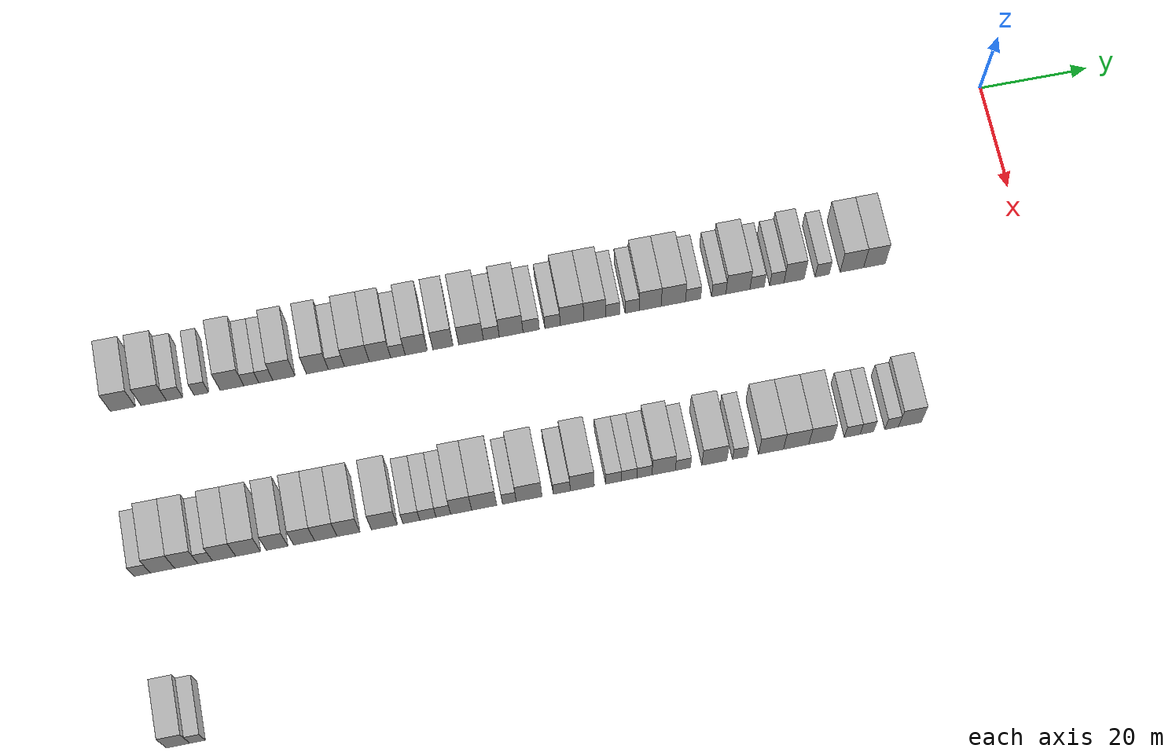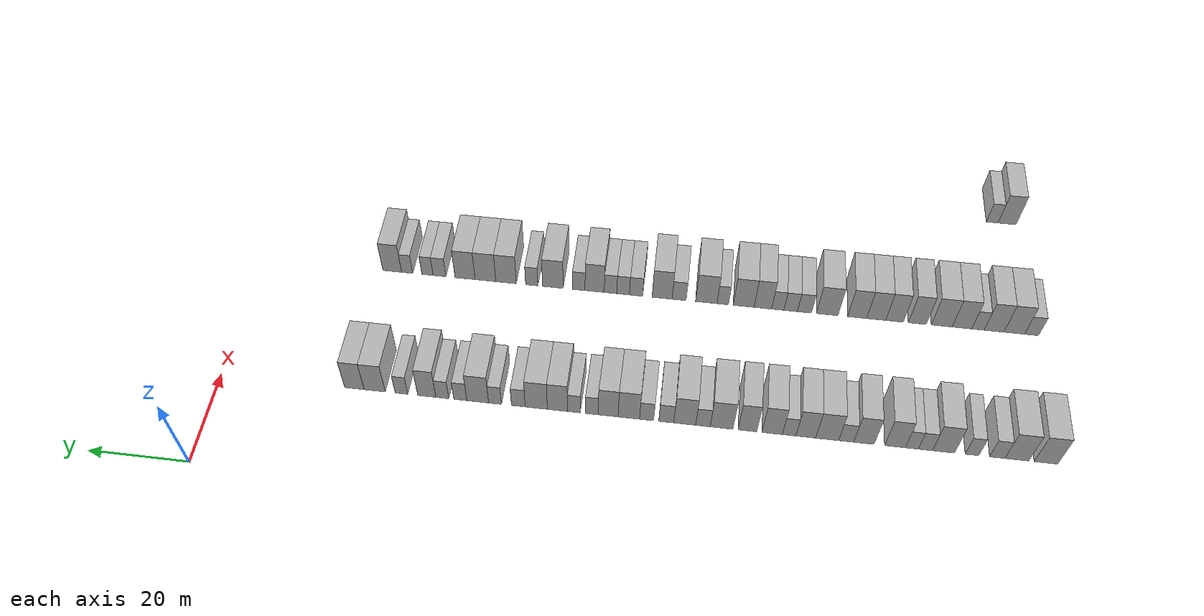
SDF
<sdf version="1.6">
 <world name="default">
  <model name="building_73">
   <static>1</static>
   <pose>25.0000 -161.7182 0 0.000000 0.000000 0.000000</pose>
   <link name="link">
    <pose>0 0 4.50 0 0 0</pose>
    <collision name="collision"><geometry><box><size>10.0000 4.3813 9.0000</size></box></geometry></collision>
    <visual name="visual">
     <cast_shadows>0</cast_shadows>
     <geometry><box><size>10.0000 4.3813 9.0000</size></box></geometry>
     <material>
      <script>
       <uri>model://HANNAS_wall/materials/scripts</uri>
       <uri>model://HANNAS_wall/materials/textures</uri>
       <name>vrc/HANNAS_wall</name>
      </script>
     </material>
    </visual>
   </link>
  </model>
  <model name="building_74">
   <static>1</static>
   <pose>25.0000 -156.3015 0 0.000000 0.000000 0.000000</pose>
   <link name="link">
    <pose>0 0 4.50 0 0 0</pose>
    <collision name="collision"><geometry><box><size>10.0000 4.4521 9.0000</size></box></geometry></collision>
    <visual name="visual">
     <cast_shadows>0</cast_shadows>
     <geometry><box><size>10.0000 4.4521 9.0000</size></box></geometry>
     <material>
      <script>
       <uri>model://HANNAS_wall/materials/scripts</uri>
       <uri>model://HANNAS_wall/materials/textures</uri>
       <name>vrc/HANNAS_wall</name>
      </script>
     </material>
    </visual>
   </link>
  </model>
  <model name="building_75">
   <static>1</static>
   <pose>25.0000 -152.6374 0 0.000000 0.000000 0.000000</pose>
   <link name="link">
    <pose>0 0 3.00 0 0 0</pose>
    <collision name="collision"><geometry><box><size>10.0000 2.8760 6.0000</size></box></geometry></collision>
    <visual name="visual">
     <cast_shadows>0</cast_shadows>
     <geometry><box><size>10.0000 2.8760 6.0000</size></box></geometry>
     <material>
      <script>
       <uri>model://HANNAS_wall/materials/scripts</uri>
       <uri>model://HANNAS_wall/materials/textures</uri>
       <name>vrc/HANNAS_wall</name>
      </script>
     </material>
    </visual>
   </link>
  </model>
  <model name="building_76">
   <static>1</static>
   <pose>25.0000 -147.9092 0 0.000000 0.000000 0.000000</pose>
   <link name="link">
    <pose>0 0 3.00 0 0 0</pose>
    <collision name="collision"><geometry><box><size>10.0000 2.5805 6.0000</size></box></geometry></collision>
    <visual name="visual">
     <cast_shadows>0</cast_shadows>
     <geometry><box><size>10.0000 2.5805 6.0000</size></box></geometry>
     <material>
      <script>
       <uri>model://HANNAS_wall/materials/scripts</uri>
       <uri>model://HANNAS_wall/materials/textures</uri>
       <name>vrc/HANNAS_wall</name>
      </script>
     </material>
    </visual>
   </link>
  </model>
  <model name="building_77">
   <static>1</static>
   <pose>25.0000 -142.5329 0 0.000000 0.000000 0.000000</pose>
   <link name="link">
    <pose>0 0 4.50 0 0 0</pose>
    <collision name="collision"><geometry><box><size>10.0000 4.1720 9.0000</size></box></geometry></collision>
    <visual name="visual">
     <cast_shadows>0</cast_shadows>
     <geometry><box><size>10.0000 4.1720 9.0000</size></box></geometry>
     <material>
      <script>
       <uri>model://HANNAS_wall/materials/scripts</uri>
       <uri>model://HANNAS_wall/materials/textures</uri>
       <name>vrc/HANNAS_wall</name>
      </script>
     </material>
    </visual>
   </link>
  </model>
  <model name="building_78">
   <static>1</static>
   <pose>25.0000 -139.1160 0 0.000000 0.000000 0.000000</pose>
   <link name="link">
    <pose>0 0 3.00 0 0 0</pose>
    <collision name="collision"><geometry><box><size>10.0000 2.6619 6.0000</size></box></geometry></collision>
    <visual name="visual">
     <cast_shadows>0</cast_shadows>
     <geometry><box><size>10.0000 2.6619 6.0000</size></box></geometry>
     <material>
      <script>
       <uri>model://HANNAS_wall/materials/scripts</uri>
       <uri>model://HANNAS_wall/materials/textures</uri>
       <name>vrc/HANNAS_wall</name>
      </script>
     </material>
    </visual>
   </link>
  </model>
  <model name="building_79">
   <static>1</static>
   <pose>25.0000 -136.5562 0 0.000000 0.000000 0.000000</pose>
   <link name="link">
    <pose>0 0 3.00 0 0 0</pose>
    <collision name="collision"><geometry><box><size>10.0000 2.4576 6.0000</size></box></geometry></collision>
    <visual name="visual">
     <cast_shadows>0</cast_shadows>
     <geometry><box><size>10.0000 2.4576 6.0000</size></box></geometry>
     <material>
      <script>
       <uri>model://HANNAS_wall/materials/scripts</uri>
       <uri>model://HANNAS_wall/materials/textures</uri>
       <name>vrc/HANNAS_wall</name>
      </script>
     </material>
    </visual>
   </link>
  </model>
  <model name="building_80">
   <static>1</static>
   <pose>25.0000 -133.3640 0 0.000000 0.000000 0.000000</pose>
   <link name="link">
    <pose>0 0 4.50 0 0 0</pose>
    <collision name="collision"><geometry><box><size>10.0000 3.9268 9.0000</size></box></geometry></collision>
    <visual name="visual">
     <cast_shadows>0</cast_shadows>
     <geometry><box><size>10.0000 3.9268 9.0000</size></box></geometry>
     <material>
      <script>
       <uri>model://HANNAS_wall/materials/scripts</uri>
       <uri>model://HANNAS_wall/materials/textures</uri>
       <name>vrc/HANNAS_wall</name>
      </script>
     </material>
    </visual>
   </link>
  </model>
  <model name="building_81">
   <static>1</static>
   <pose>25.0000 -127.4541 0 0.000000 0.000000 0.000000</pose>
   <link name="link">
    <pose>0 0 4.50 0 0 0</pose>
    <collision name="collision"><geometry><box><size>10.0000 3.8930 9.0000</size></box></geometry></collision>
    <visual name="visual">
     <cast_shadows>0</cast_shadows>
     <geometry><box><size>10.0000 3.8930 9.0000</size></box></geometry>
     <material>
      <script>
       <uri>model://HANNAS_wall/materials/scripts</uri>
       <uri>model://HANNAS_wall/materials/textures</uri>
       <name>vrc/HANNAS_wall</name>
      </script>
     </material>
    </visual>
   </link>
  </model>
  <model name="building_82">
   <static>1</static>
   <pose>25.0000 -124.0770 0 0.000000 0.000000 0.000000</pose>
   <link name="link">
    <pose>0 0 3.00 0 0 0</pose>
    <collision name="collision"><geometry><box><size>10.0000 2.8612 6.0000</size></box></geometry></collision>
    <visual name="visual">
     <cast_shadows>0</cast_shadows>
     <geometry><box><size>10.0000 2.8612 6.0000</size></box></geometry>
     <material>
      <script>
       <uri>model://HANNAS_wall/materials/scripts</uri>
       <uri>model://HANNAS_wall/materials/textures</uri>
       <name>vrc/HANNAS_wall</name>
      </script>
     </material>
    </visual>
   </link>
  </model>
  <model name="building_83">
   <static>1</static>
   <pose>25.0000 -120.4409 0 0.000000 0.000000 0.000000</pose>
   <link name="link">
    <pose>0 0 4.50 0 0 0</pose>
    <collision name="collision"><geometry><box><size>10.0000 4.4110 9.0000</size></box></geometry></collision>
    <visual name="visual">
     <cast_shadows>0</cast_shadows>
     <geometry><box><size>10.0000 4.4110 9.0000</size></box></geometry>
     <material>
      <script>
       <uri>model://HANNAS_wall/materials/scripts</uri>
       <uri>model://HANNAS_wall/materials/textures</uri>
       <name>vrc/HANNAS_wall</name>
      </script>
     </material>
    </visual>
   </link>
  </model>
  <model name="building_84">
   <static>1</static>
   <pose>25.0000 -116.3368 0 0.000000 0.000000 0.000000</pose>
   <link name="link">
    <pose>0 0 4.50 0 0 0</pose>
    <collision name="collision"><geometry><box><size>10.0000 3.7971 9.0000</size></box></geometry></collision>
    <visual name="visual">
     <cast_shadows>0</cast_shadows>
     <geometry><box><size>10.0000 3.7971 9.0000</size></box></geometry>
     <material>
      <script>
       <uri>model://HANNAS_wall/materials/scripts</uri>
       <uri>model://HANNAS_wall/materials/textures</uri>
       <name>vrc/HANNAS_wall</name>
      </script>
     </material>
    </visual>
   </link>
  </model>
  <model name="building_85">
   <static>1</static>
   <pose>25.0000 -113.1431 0 0.000000 0.000000 0.000000</pose>
   <link name="link">
    <pose>0 0 3.00 0 0 0</pose>
    <collision name="collision"><geometry><box><size>10.0000 2.5903 6.0000</size></box></geometry></collision>
    <visual name="visual">
     <cast_shadows>0</cast_shadows>
     <geometry><box><size>10.0000 2.5903 6.0000</size></box></geometry>
     <material>
      <script>
       <uri>model://HANNAS_wall/materials/scripts</uri>
       <uri>model://HANNAS_wall/materials/textures</uri>
       <name>vrc/HANNAS_wall</name>
      </script>
     </material>
    </visual>
   </link>
  </model>
  <model name="building_86">
   <static>1</static>
   <pose>25.0000 -109.8845 0 0.000000 0.000000 0.000000</pose>
   <link name="link">
    <pose>0 0 4.50 0 0 0</pose>
    <collision name="collision"><geometry><box><size>10.0000 3.9269 9.0000</size></box></geometry></collision>
    <visual name="visual">
     <cast_shadows>0</cast_shadows>
     <geometry><box><size>10.0000 3.9269 9.0000</size></box></geometry>
     <material>
      <script>
       <uri>model://HANNAS_wall/materials/scripts</uri>
       <uri>model://HANNAS_wall/materials/textures</uri>
       <name>vrc/HANNAS_wall</name>
      </script>
     </material>
    </visual>
   </link>
  </model>
  <model name="building_87">
   <static>1</static>
   <pose>25.0000 -105.1156 0 0.000000 0.000000 0.000000</pose>
   <link name="link">
    <pose>0 0 4.50 0 0 0</pose>
    <collision name="collision"><geometry><box><size>10.0000 3.6111 9.0000</size></box></geometry></collision>
    <visual name="visual">
     <cast_shadows>0</cast_shadows>
     <geometry><box><size>10.0000 3.6111 9.0000</size></box></geometry>
     <material>
      <script>
       <uri>model://HANNAS_wall/materials/scripts</uri>
       <uri>model://HANNAS_wall/materials/textures</uri>
       <name>vrc/HANNAS_wall</name>
      </script>
     </material>
    </visual>
   </link>
  </model>
  <model name="building_88">
   <static>1</static>
   <pose>25.0000 -100.0986 0 0.000000 0.000000 0.000000</pose>
   <link name="link">
    <pose>0 0 4.50 0 0 0</pose>
    <collision name="collision"><geometry><box><size>10.0000 4.4229 9.0000</size></box></geometry></collision>
    <visual name="visual">
     <cast_shadows>0</cast_shadows>
     <geometry><box><size>10.0000 4.4229 9.0000</size></box></geometry>
     <material>
      <script>
       <uri>model://HANNAS_wall/materials/scripts</uri>
       <uri>model://HANNAS_wall/materials/textures</uri>
       <name>vrc/HANNAS_wall</name>
      </script>
     </material>
    </visual>
   </link>
  </model>
  <model name="building_89">
   <static>1</static>
   <pose>25.0000 -96.4747 0 0.000000 0.000000 0.000000</pose>
   <link name="link">
    <pose>0 0 3.00 0 0 0</pose>
    <collision name="collision"><geometry><box><size>10.0000 2.8248 6.0000</size></box></geometry></collision>
    <visual name="visual">
     <cast_shadows>0</cast_shadows>
     <geometry><box><size>10.0000 2.8248 6.0000</size></box></geometry>
     <material>
      <script>
       <uri>model://HANNAS_wall/materials/scripts</uri>
       <uri>model://HANNAS_wall/materials/textures</uri>
       <name>vrc/HANNAS_wall</name>
      </script>
     </material>
    </visual>
   </link>
  </model>
  <model name="building_90">
   <static>1</static>
   <pose>25.0000 -92.9332 0 0.000000 0.000000 0.000000</pose>
   <link name="link">
    <pose>0 0 4.50 0 0 0</pose>
    <collision name="collision"><geometry><box><size>10.0000 4.2583 9.0000</size></box></geometry></collision>
    <visual name="visual">
     <cast_shadows>0</cast_shadows>
     <geometry><box><size>10.0000 4.2583 9.0000</size></box></geometry>
     <material>
      <script>
       <uri>model://HANNAS_wall/materials/scripts</uri>
       <uri>model://HANNAS_wall/materials/textures</uri>
       <name>vrc/HANNAS_wall</name>
      </script>
     </material>
    </visual>
   </link>
  </model>
  <model name="building_91">
   <static>1</static>
   <pose>25.0000 -89.3431 0 0.000000 0.000000 0.000000</pose>
   <link name="link">
    <pose>0 0 3.00 0 0 0</pose>
    <collision name="collision"><geometry><box><size>10.0000 2.9218 6.0000</size></box></geometry></collision>
    <visual name="visual">
     <cast_shadows>0</cast_shadows>
     <geometry><box><size>10.0000 2.9218 6.0000</size></box></geometry>
     <material>
      <script>
       <uri>model://HANNAS_wall/materials/scripts</uri>
       <uri>model://HANNAS_wall/materials/textures</uri>
       <name>vrc/HANNAS_wall</name>
      </script>
     </material>
    </visual>
   </link>
  </model>
  <model name="building_92">
   <static>1</static>
   <pose>25.0000 -85.5002 0 0.000000 0.000000 0.000000</pose>
   <link name="link">
    <pose>0 0 3.00 0 0 0</pose>
    <collision name="collision"><geometry><box><size>10.0000 2.7640 6.0000</size></box></geometry></collision>
    <visual name="visual">
     <cast_shadows>0</cast_shadows>
     <geometry><box><size>10.0000 2.7640 6.0000</size></box></geometry>
     <material>
      <script>
       <uri>model://HANNAS_wall/materials/scripts</uri>
       <uri>model://HANNAS_wall/materials/textures</uri>
       <name>vrc/HANNAS_wall</name>
      </script>
     </material>
    </visual>
   </link>
  </model>
  <model name="building_93">
   <static>1</static>
   <pose>25.0000 -82.0071 0 0.000000 0.000000 0.000000</pose>
   <link name="link">
    <pose>0 0 4.50 0 0 0</pose>
    <collision name="collision"><geometry><box><size>10.0000 4.2223 9.0000</size></box></geometry></collision>
    <visual name="visual">
     <cast_shadows>0</cast_shadows>
     <geometry><box><size>10.0000 4.2223 9.0000</size></box></geometry>
     <material>
      <script>
       <uri>model://HANNAS_wall/materials/scripts</uri>
       <uri>model://HANNAS_wall/materials/textures</uri>
       <name>vrc/HANNAS_wall</name>
      </script>
     </material>
    </visual>
   </link>
  </model>
  <model name="building_94">
   <static>1</static>
   <pose>25.0000 -77.9444 0 0.000000 0.000000 0.000000</pose>
   <link name="link">
    <pose>0 0 4.50 0 0 0</pose>
    <collision name="collision"><geometry><box><size>10.0000 3.9031 9.0000</size></box></geometry></collision>
    <visual name="visual">
     <cast_shadows>0</cast_shadows>
     <geometry><box><size>10.0000 3.9031 9.0000</size></box></geometry>
     <material>
      <script>
       <uri>model://HANNAS_wall/materials/scripts</uri>
       <uri>model://HANNAS_wall/materials/textures</uri>
       <name>vrc/HANNAS_wall</name>
      </script>
     </material>
    </visual>
   </link>
  </model>
  <model name="building_95">
   <static>1</static>
   <pose>25.0000 -74.7239 0 0.000000 0.000000 0.000000</pose>
   <link name="link">
    <pose>0 0 3.00 0 0 0</pose>
    <collision name="collision"><geometry><box><size>10.0000 2.5379 6.0000</size></box></geometry></collision>
    <visual name="visual">
     <cast_shadows>0</cast_shadows>
     <geometry><box><size>10.0000 2.5379 6.0000</size></box></geometry>
     <material>
      <script>
       <uri>model://HANNAS_wall/materials/scripts</uri>
       <uri>model://HANNAS_wall/materials/textures</uri>
       <name>vrc/HANNAS_wall</name>
      </script>
     </material>
    </visual>
   </link>
  </model>
  <model name="building_96">
   <static>1</static>
   <pose>25.0000 -71.1891 0 0.000000 0.000000 0.000000</pose>
   <link name="link">
    <pose>0 0 3.00 0 0 0</pose>
    <collision name="collision"><geometry><box><size>10.0000 2.5318 6.0000</size></box></geometry></collision>
    <visual name="visual">
     <cast_shadows>0</cast_shadows>
     <geometry><box><size>10.0000 2.5318 6.0000</size></box></geometry>
     <material>
      <script>
       <uri>model://HANNAS_wall/materials/scripts</uri>
       <uri>model://HANNAS_wall/materials/textures</uri>
       <name>vrc/HANNAS_wall</name>
      </script>
     </material>
    </visual>
   </link>
  </model>
  <model name="building_97">
   <static>1</static>
   <pose>25.0000 -67.9369 0 0.000000 0.000000 0.000000</pose>
   <link name="link">
    <pose>0 0 4.50 0 0 0</pose>
    <collision name="collision"><geometry><box><size>10.0000 3.9725 9.0000</size></box></geometry></collision>
    <visual name="visual">
     <cast_shadows>0</cast_shadows>
     <geometry><box><size>10.0000 3.9725 9.0000</size></box></geometry>
     <material>
      <script>
       <uri>model://HANNAS_wall/materials/scripts</uri>
       <uri>model://HANNAS_wall/materials/textures</uri>
       <name>vrc/HANNAS_wall</name>
      </script>
     </material>
    </visual>
   </link>
  </model>
  <model name="building_98">
   <static>1</static>
   <pose>25.0000 -63.7596 0 0.000000 0.000000 0.000000</pose>
   <link name="link">
    <pose>0 0 4.50 0 0 0</pose>
    <collision name="collision"><geometry><box><size>10.0000 4.3821 9.0000</size></box></geometry></collision>
    <visual name="visual">
     <cast_shadows>0</cast_shadows>
     <geometry><box><size>10.0000 4.3821 9.0000</size></box></geometry>
     <material>
      <script>
       <uri>model://HANNAS_wall/materials/scripts</uri>
       <uri>model://HANNAS_wall/materials/textures</uri>
       <name>vrc/HANNAS_wall</name>
      </script>
     </material>
    </visual>
   </link>
  </model>
  <model name="building_99">
   <static>1</static>
   <pose>25.0000 -60.1982 0 0.000000 0.000000 0.000000</pose>
   <link name="link">
    <pose>0 0 3.00 0 0 0</pose>
    <collision name="collision"><geometry><box><size>10.0000 2.7407 6.0000</size></box></geometry></collision>
    <visual name="visual">
     <cast_shadows>0</cast_shadows>
     <geometry><box><size>10.0000 2.7407 6.0000</size></box></geometry>
     <material>
      <script>
       <uri>model://HANNAS_wall/materials/scripts</uri>
       <uri>model://HANNAS_wall/materials/textures</uri>
       <name>vrc/HANNAS_wall</name>
      </script>
     </material>
    </visual>
   </link>
  </model>
  <model name="building_100">
   <static>1</static>
   <pose>25.0000 -55.5443 0 0.000000 0.000000 0.000000</pose>
   <link name="link">
    <pose>0 0 3.00 0 0 0</pose>
    <collision name="collision"><geometry><box><size>10.0000 2.5671 6.0000</size></box></geometry></collision>
    <visual name="visual">
     <cast_shadows>0</cast_shadows>
     <geometry><box><size>10.0000 2.5671 6.0000</size></box></geometry>
     <material>
      <script>
       <uri>model://HANNAS_wall/materials/scripts</uri>
       <uri>model://HANNAS_wall/materials/textures</uri>
       <name>vrc/HANNAS_wall</name>
      </script>
     </material>
    </visual>
   </link>
  </model>
  <model name="building_101">
   <static>1</static>
   <pose>25.0000 -52.0835 0 0.000000 0.000000 0.000000</pose>
   <link name="link">
    <pose>0 0 4.50 0 0 0</pose>
    <collision name="collision"><geometry><box><size>10.0000 4.3545 9.0000</size></box></geometry></collision>
    <visual name="visual">
     <cast_shadows>0</cast_shadows>
     <geometry><box><size>10.0000 4.3545 9.0000</size></box></geometry>
     <material>
      <script>
       <uri>model://HANNAS_wall/materials/scripts</uri>
       <uri>model://HANNAS_wall/materials/textures</uri>
       <name>vrc/HANNAS_wall</name>
      </script>
     </material>
    </visual>
   </link>
  </model>
  <model name="building_102">
   <static>1</static>
   <pose>25.0000 -48.5972 0 0.000000 0.000000 0.000000</pose>
   <link name="link">
    <pose>0 0 3.00 0 0 0</pose>
    <collision name="collision"><geometry><box><size>10.0000 2.6182 6.0000</size></box></geometry></collision>
    <visual name="visual">
     <cast_shadows>0</cast_shadows>
     <geometry><box><size>10.0000 2.6182 6.0000</size></box></geometry>
     <material>
      <script>
       <uri>model://HANNAS_wall/materials/scripts</uri>
       <uri>model://HANNAS_wall/materials/textures</uri>
       <name>vrc/HANNAS_wall</name>
      </script>
     </material>
    </visual>
   </link>
  </model>
  <model name="building_103">
   <static>1</static>
   <pose>25.0000 -44.9906 0 0.000000 0.000000 0.000000</pose>
   <link name="link">
    <pose>0 0 3.00 0 0 0</pose>
    <collision name="collision"><geometry><box><size>10.0000 2.5950 6.0000</size></box></geometry></collision>
    <visual name="visual">
     <cast_shadows>0</cast_shadows>
     <geometry><box><size>10.0000 2.5950 6.0000</size></box></geometry>
     <material>
      <script>
       <uri>model://HANNAS_wall/materials/scripts</uri>
       <uri>model://HANNAS_wall/materials/textures</uri>
       <name>vrc/HANNAS_wall</name>
      </script>
     </material>
    </visual>
   </link>
  </model>
  <model name="building_104">
   <static>1</static>
   <pose>25.0000 -41.8631 0 0.000000 0.000000 0.000000</pose>
   <link name="link">
    <pose>0 0 4.50 0 0 0</pose>
    <collision name="collision"><geometry><box><size>10.0000 3.6600 9.0000</size></box></geometry></collision>
    <visual name="visual">
     <cast_shadows>0</cast_shadows>
     <geometry><box><size>10.0000 3.6600 9.0000</size></box></geometry>
     <material>
      <script>
       <uri>model://HANNAS_wall/materials/scripts</uri>
       <uri>model://HANNAS_wall/materials/textures</uri>
       <name>vrc/HANNAS_wall</name>
      </script>
     </material>
    </visual>
   </link>
  </model>
  <model name="building_105">
   <static>1</static>
   <pose>25.0000 -36.7471 0 0.000000 0.000000 0.000000</pose>
   <link name="link">
    <pose>0 0 3.00 0 0 0</pose>
    <collision name="collision"><geometry><box><size>10.0000 2.5720 6.0000</size></box></geometry></collision>
    <visual name="visual">
     <cast_shadows>0</cast_shadows>
     <geometry><box><size>10.0000 2.5720 6.0000</size></box></geometry>
     <material>
      <script>
       <uri>model://HANNAS_wall/materials/scripts</uri>
       <uri>model://HANNAS_wall/materials/textures</uri>
       <name>vrc/HANNAS_wall</name>
      </script>
     </material>
    </visual>
   </link>
  </model>
  <model name="building_106">
   <static>1</static>
   <pose>25.0000 -31.3175 0 0.000000 0.000000 0.000000</pose>
   <link name="link">
    <pose>0 0 4.50 0 0 0</pose>
    <collision name="collision"><geometry><box><size>10.0000 4.2872 9.0000</size></box></geometry></collision>
    <visual name="visual">
     <cast_shadows>0</cast_shadows>
     <geometry><box><size>10.0000 4.2872 9.0000</size></box></geometry>
     <material>
      <script>
       <uri>model://HANNAS_wall/materials/scripts</uri>
       <uri>model://HANNAS_wall/materials/textures</uri>
       <name>vrc/HANNAS_wall</name>
      </script>
     </material>
    </visual>
   </link>
  </model>
  <model name="building_107">
   <static>1</static>
   <pose>25.0000 -27.2060 0 0.000000 0.000000 0.000000</pose>
   <link name="link">
    <pose>0 0 4.50 0 0 0</pose>
    <collision name="collision"><geometry><box><size>10.0000 3.9358 9.0000</size></box></geometry></collision>
    <visual name="visual">
     <cast_shadows>0</cast_shadows>
     <geometry><box><size>10.0000 3.9358 9.0000</size></box></geometry>
     <material>
      <script>
       <uri>model://HANNAS_wall/materials/scripts</uri>
       <uri>model://HANNAS_wall/materials/textures</uri>
       <name>vrc/HANNAS_wall</name>
      </script>
     </material>
    </visual>
   </link>
  </model>
  <model name="building_297">
   <static>1</static>
   <pose>55.0000 -162.3541 0 0.000000 0.000000 0.000000</pose>
   <link name="link">
    <pose>0 0 3.00 0 0 0</pose>
    <collision name="collision"><geometry><box><size>10.0000 2.8178 6.0000</size></box></geometry></collision>
    <visual name="visual">
     <cast_shadows>0</cast_shadows>
     <geometry><box><size>10.0000 2.8178 6.0000</size></box></geometry>
     <material>
      <script>
       <uri>model://HANNAS_wall/materials/scripts</uri>
       <uri>model://HANNAS_wall/materials/textures</uri>
       <name>vrc/HANNAS_wall</name>
      </script>
     </material>
    </visual>
   </link>
  </model>
  <model name="building_298">
   <static>1</static>
   <pose>55.0000 -158.8586 0 0.000000 0.000000 0.000000</pose>
   <link name="link">
    <pose>0 0 4.50 0 0 0</pose>
    <collision name="collision"><geometry><box><size>10.0000 4.1732 9.0000</size></box></geometry></collision>
    <visual name="visual">
     <cast_shadows>0</cast_shadows>
     <geometry><box><size>10.0000 4.1732 9.0000</size></box></geometry>
     <material>
      <script>
       <uri>model://HANNAS_wall/materials/scripts</uri>
       <uri>model://HANNAS_wall/materials/textures</uri>
       <name>vrc/HANNAS_wall</name>
      </script>
     </material>
    </visual>
   </link>
  </model>
  <model name="building_299">
   <static>1</static>
   <pose>55.0000 -154.7723 0 0.000000 0.000000 0.000000</pose>
   <link name="link">
    <pose>0 0 4.50 0 0 0</pose>
    <collision name="collision"><geometry><box><size>10.0000 3.9994 9.0000</size></box></geometry></collision>
    <visual name="visual">
     <cast_shadows>0</cast_shadows>
     <geometry><box><size>10.0000 3.9994 9.0000</size></box></geometry>
     <material>
      <script>
       <uri>model://HANNAS_wall/materials/scripts</uri>
       <uri>model://HANNAS_wall/materials/textures</uri>
       <name>vrc/HANNAS_wall</name>
      </script>
     </material>
    </visual>
   </link>
  </model>
  <model name="building_300">
   <static>1</static>
   <pose>55.0000 -151.5075 0 0.000000 0.000000 0.000000</pose>
   <link name="link">
    <pose>0 0 3.00 0 0 0</pose>
    <collision name="collision"><geometry><box><size>10.0000 2.5303 6.0000</size></box></geometry></collision>
    <visual name="visual">
     <cast_shadows>0</cast_shadows>
     <geometry><box><size>10.0000 2.5303 6.0000</size></box></geometry>
     <material>
      <script>
       <uri>model://HANNAS_wall/materials/scripts</uri>
       <uri>model://HANNAS_wall/materials/textures</uri>
       <name>vrc/HANNAS_wall</name>
      </script>
     </material>
    </visual>
   </link>
  </model>
  <model name="building_301">
   <static>1</static>
   <pose>55.0000 -148.2563 0 0.000000 0.000000 0.000000</pose>
   <link name="link">
    <pose>0 0 4.50 0 0 0</pose>
    <collision name="collision"><geometry><box><size>10.0000 3.9722 9.0000</size></box></geometry></collision>
    <visual name="visual">
     <cast_shadows>0</cast_shadows>
     <geometry><box><size>10.0000 3.9722 9.0000</size></box></geometry>
     <material>
      <script>
       <uri>model://HANNAS_wall/materials/scripts</uri>
       <uri>model://HANNAS_wall/materials/textures</uri>
       <name>vrc/HANNAS_wall</name>
      </script>
     </material>
    </visual>
   </link>
  </model>
  <model name="building_302">
   <static>1</static>
   <pose>55.0000 -144.1333 0 0.000000 0.000000 0.000000</pose>
   <link name="link">
    <pose>0 0 4.50 0 0 0</pose>
    <collision name="collision"><geometry><box><size>10.0000 4.2737 9.0000</size></box></geometry></collision>
    <visual name="visual">
     <cast_shadows>0</cast_shadows>
     <geometry><box><size>10.0000 4.2737 9.0000</size></box></geometry>
     <material>
      <script>
       <uri>model://HANNAS_wall/materials/scripts</uri>
       <uri>model://HANNAS_wall/materials/textures</uri>
       <name>vrc/HANNAS_wall</name>
      </script>
     </material>
    </visual>
   </link>
  </model>
  <model name="building_303">
   <static>1</static>
   <pose>55.0000 -139.1485 0 0.000000 0.000000 0.000000</pose>
   <link name="link">
    <pose>0 0 4.50 0 0 0</pose>
    <collision name="collision"><geometry><box><size>10.0000 3.6960 9.0000</size></box></geometry></collision>
    <visual name="visual">
     <cast_shadows>0</cast_shadows>
     <geometry><box><size>10.0000 3.6960 9.0000</size></box></geometry>
     <material>
      <script>
       <uri>model://HANNAS_wall/materials/scripts</uri>
       <uri>model://HANNAS_wall/materials/textures</uri>
       <name>vrc/HANNAS_wall</name>
      </script>
     </material>
    </visual>
   </link>
  </model>
  <model name="building_304">
   <static>1</static>
   <pose>55.0000 -134.4869 0 0.000000 0.000000 0.000000</pose>
   <link name="link">
    <pose>0 0 4.50 0 0 0</pose>
    <collision name="collision"><geometry><box><size>10.0000 3.6271 9.0000</size></box></geometry></collision>
    <visual name="visual">
     <cast_shadows>0</cast_shadows>
     <geometry><box><size>10.0000 3.6271 9.0000</size></box></geometry>
     <material>
      <script>
       <uri>model://HANNAS_wall/materials/scripts</uri>
       <uri>model://HANNAS_wall/materials/textures</uri>
       <name>vrc/HANNAS_wall</name>
      </script>
     </material>
    </visual>
   </link>
  </model>
  <model name="building_305">
   <static>1</static>
   <pose>55.0000 -130.7229 0 0.000000 0.000000 0.000000</pose>
   <link name="link">
    <pose>0 0 4.50 0 0 0</pose>
    <collision name="collision"><geometry><box><size>10.0000 3.9009 9.0000</size></box></geometry></collision>
    <visual name="visual">
     <cast_shadows>0</cast_shadows>
     <geometry><box><size>10.0000 3.9009 9.0000</size></box></geometry>
     <material>
      <script>
       <uri>model://HANNAS_wall/materials/scripts</uri>
       <uri>model://HANNAS_wall/materials/textures</uri>
       <name>vrc/HANNAS_wall</name>
      </script>
     </material>
    </visual>
   </link>
  </model>
  <model name="building_306">
   <static>1</static>
   <pose>55.0000 -126.8105 0 0.000000 0.000000 0.000000</pose>
   <link name="link">
    <pose>0 0 4.50 0 0 0</pose>
    <collision name="collision"><geometry><box><size>10.0000 3.9239 9.0000</size></box></geometry></collision>
    <visual name="visual">
     <cast_shadows>0</cast_shadows>
     <geometry><box><size>10.0000 3.9239 9.0000</size></box></geometry>
     <material>
      <script>
       <uri>model://HANNAS_wall/materials/scripts</uri>
       <uri>model://HANNAS_wall/materials/textures</uri>
       <name>vrc/HANNAS_wall</name>
      </script>
     </material>
    </visual>
   </link>
  </model>
  <model name="building_307">
   <static>1</static>
   <pose>55.0000 -120.6150 0 0.000000 0.000000 0.000000</pose>
   <link name="link">
    <pose>0 0 4.50 0 0 0</pose>
    <collision name="collision"><geometry><box><size>10.0000 4.4670 9.0000</size></box></geometry></collision>
    <visual name="visual">
     <cast_shadows>0</cast_shadows>
     <geometry><box><size>10.0000 4.4670 9.0000</size></box></geometry>
     <material>
      <script>
       <uri>model://HANNAS_wall/materials/scripts</uri>
       <uri>model://HANNAS_wall/materials/textures</uri>
       <name>vrc/HANNAS_wall</name>
      </script>
     </material>
    </visual>
   </link>
  </model>
  <model name="building_308">
   <static>1</static>
   <pose>55.0000 -115.9228 0 0.000000 0.000000 0.000000</pose>
   <link name="link">
    <pose>0 0 3.00 0 0 0</pose>
    <collision name="collision"><geometry><box><size>10.0000 2.9176 6.0000</size></box></geometry></collision>
    <visual name="visual">
     <cast_shadows>0</cast_shadows>
     <geometry><box><size>10.0000 2.9176 6.0000</size></box></geometry>
     <material>
      <script>
       <uri>model://HANNAS_wall/materials/scripts</uri>
       <uri>model://HANNAS_wall/materials/textures</uri>
       <name>vrc/HANNAS_wall</name>
      </script>
     </material>
    </visual>
   </link>
  </model>
  <model name="building_309">
   <static>1</static>
   <pose>55.0000 -113.0488 0 0.000000 0.000000 0.000000</pose>
   <link name="link">
    <pose>0 0 3.00 0 0 0</pose>
    <collision name="collision"><geometry><box><size>10.0000 2.8302 6.0000</size></box></geometry></collision>
    <visual name="visual">
     <cast_shadows>0</cast_shadows>
     <geometry><box><size>10.0000 2.8302 6.0000</size></box></geometry>
     <material>
      <script>
       <uri>model://HANNAS_wall/materials/scripts</uri>
       <uri>model://HANNAS_wall/materials/textures</uri>
       <name>vrc/HANNAS_wall</name>
      </script>
     </material>
    </visual>
   </link>
  </model>
  <model name="building_310">
   <static>1</static>
   <pose>55.0000 -110.3624 0 0.000000 0.000000 0.000000</pose>
   <link name="link">
    <pose>0 0 3.00 0 0 0</pose>
    <collision name="collision"><geometry><box><size>10.0000 2.5426 6.0000</size></box></geometry></collision>
    <visual name="visual">
     <cast_shadows>0</cast_shadows>
     <geometry><box><size>10.0000 2.5426 6.0000</size></box></geometry>
     <material>
      <script>
       <uri>model://HANNAS_wall/materials/scripts</uri>
       <uri>model://HANNAS_wall/materials/textures</uri>
       <name>vrc/HANNAS_wall</name>
      </script>
     </material>
    </visual>
   </link>
  </model>
  <model name="building_311">
   <static>1</static>
   <pose>55.0000 -107.2577 0 0.000000 0.000000 0.000000</pose>
   <link name="link">
    <pose>0 0 4.50 0 0 0</pose>
    <collision name="collision"><geometry><box><size>10.0000 3.6669 9.0000</size></box></geometry></collision>
    <visual name="visual">
     <cast_shadows>0</cast_shadows>
     <geometry><box><size>10.0000 3.6669 9.0000</size></box></geometry>
     <material>
      <script>
       <uri>model://HANNAS_wall/materials/scripts</uri>
       <uri>model://HANNAS_wall/materials/textures</uri>
       <name>vrc/HANNAS_wall</name>
      </script>
     </material>
    </visual>
   </link>
  </model>
  <model name="building_312">
   <static>1</static>
   <pose>55.0000 -103.2438 0 0.000000 0.000000 0.000000</pose>
   <link name="link">
    <pose>0 0 4.50 0 0 0</pose>
    <collision name="collision"><geometry><box><size>10.0000 4.3608 9.0000</size></box></geometry></collision>
    <visual name="visual">
     <cast_shadows>0</cast_shadows>
     <geometry><box><size>10.0000 4.3608 9.0000</size></box></geometry>
     <material>
      <script>
       <uri>model://HANNAS_wall/materials/scripts</uri>
       <uri>model://HANNAS_wall/materials/textures</uri>
       <name>vrc/HANNAS_wall</name>
      </script>
     </material>
    </visual>
   </link>
  </model>
  <model name="building_313">
   <static>1</static>
   <pose>55.0000 -98.8630 0 0.000000 0.000000 0.000000</pose>
   <link name="link">
    <pose>0 0 3.00 0 0 0</pose>
    <collision name="collision"><geometry><box><size>10.0000 2.4007 6.0000</size></box></geometry></collision>
    <visual name="visual">
     <cast_shadows>0</cast_shadows>
     <geometry><box><size>10.0000 2.4007 6.0000</size></box></geometry>
     <material>
      <script>
       <uri>model://HANNAS_wall/materials/scripts</uri>
       <uri>model://HANNAS_wall/materials/textures</uri>
       <name>vrc/HANNAS_wall</name>
      </script>
     </material>
    </visual>
   </link>
  </model>
  <model name="building_314">
   <static>1</static>
   <pose>55.0000 -95.4137 0 0.000000 0.000000 0.000000</pose>
   <link name="link">
    <pose>0 0 4.50 0 0 0</pose>
    <collision name="collision"><geometry><box><size>10.0000 4.4978 9.0000</size></box></geometry></collision>
    <visual name="visual">
     <cast_shadows>0</cast_shadows>
     <geometry><box><size>10.0000 4.4978 9.0000</size></box></geometry>
     <material>
      <script>
       <uri>model://HANNAS_wall/materials/scripts</uri>
       <uri>model://HANNAS_wall/materials/textures</uri>
       <name>vrc/HANNAS_wall</name>
      </script>
     </material>
    </visual>
   </link>
  </model>
  <model name="building_315">
   <static>1</static>
   <pose>55.0000 -89.6861 0 0.000000 0.000000 0.000000</pose>
   <link name="link">
    <pose>0 0 3.00 0 0 0</pose>
    <collision name="collision"><geometry><box><size>10.0000 2.9574 6.0000</size></box></geometry></collision>
    <visual name="visual">
     <cast_shadows>0</cast_shadows>
     <geometry><box><size>10.0000 2.9574 6.0000</size></box></geometry>
     <material>
      <script>
       <uri>model://HANNAS_wall/materials/scripts</uri>
       <uri>model://HANNAS_wall/materials/textures</uri>
       <name>vrc/HANNAS_wall</name>
      </script>
     </material>
    </visual>
   </link>
  </model>
  <model name="building_316">
   <static>1</static>
   <pose>55.0000 -86.1026 0 0.000000 0.000000 0.000000</pose>
   <link name="link">
    <pose>0 0 4.50 0 0 0</pose>
    <collision name="collision"><geometry><box><size>10.0000 4.2096 9.0000</size></box></geometry></collision>
    <visual name="visual">
     <cast_shadows>0</cast_shadows>
     <geometry><box><size>10.0000 4.2096 9.0000</size></box></geometry>
     <material>
      <script>
       <uri>model://HANNAS_wall/materials/scripts</uri>
       <uri>model://HANNAS_wall/materials/textures</uri>
       <name>vrc/HANNAS_wall</name>
      </script>
     </material>
    </visual>
   </link>
  </model>
  <model name="building_317">
   <static>1</static>
   <pose>55.0000 -80.5977 0 0.000000 0.000000 0.000000</pose>
   <link name="link">
    <pose>0 0 3.00 0 0 0</pose>
    <collision name="collision"><geometry><box><size>10.0000 2.8003 6.0000</size></box></geometry></collision>
    <visual name="visual">
     <cast_shadows>0</cast_shadows>
     <geometry><box><size>10.0000 2.8003 6.0000</size></box></geometry>
     <material>
      <script>
       <uri>model://HANNAS_wall/materials/scripts</uri>
       <uri>model://HANNAS_wall/materials/textures</uri>
       <name>vrc/HANNAS_wall</name>
      </script>
     </material>
    </visual>
   </link>
  </model>
  <model name="building_318">
   <static>1</static>
   <pose>55.0000 -77.8530 0 0.000000 0.000000 0.000000</pose>
   <link name="link">
    <pose>0 0 3.00 0 0 0</pose>
    <collision name="collision"><geometry><box><size>10.0000 2.6891 6.0000</size></box></geometry></collision>
    <visual name="visual">
     <cast_shadows>0</cast_shadows>
     <geometry><box><size>10.0000 2.6891 6.0000</size></box></geometry>
     <material>
      <script>
       <uri>model://HANNAS_wall/materials/scripts</uri>
       <uri>model://HANNAS_wall/materials/textures</uri>
       <name>vrc/HANNAS_wall</name>
      </script>
     </material>
    </visual>
   </link>
  </model>
  <model name="building_319">
   <static>1</static>
   <pose>55.0000 -75.1788 0 0.000000 0.000000 0.000000</pose>
   <link name="link">
    <pose>0 0 3.00 0 0 0</pose>
    <collision name="collision"><geometry><box><size>10.0000 2.6594 6.0000</size></box></geometry></collision>
    <visual name="visual">
     <cast_shadows>0</cast_shadows>
     <geometry><box><size>10.0000 2.6594 6.0000</size></box></geometry>
     <material>
      <script>
       <uri>model://HANNAS_wall/materials/scripts</uri>
       <uri>model://HANNAS_wall/materials/textures</uri>
       <name>vrc/HANNAS_wall</name>
      </script>
     </material>
    </visual>
   </link>
  </model>
  <model name="building_320">
   <static>1</static>
   <pose>55.0000 -71.7977 0 0.000000 0.000000 0.000000</pose>
   <link name="link">
    <pose>0 0 4.50 0 0 0</pose>
    <collision name="collision"><geometry><box><size>10.0000 4.1027 9.0000</size></box></geometry></collision>
    <visual name="visual">
     <cast_shadows>0</cast_shadows>
     <geometry><box><size>10.0000 4.1027 9.0000</size></box></geometry>
     <material>
      <script>
       <uri>model://HANNAS_wall/materials/scripts</uri>
       <uri>model://HANNAS_wall/materials/textures</uri>
       <name>vrc/HANNAS_wall</name>
      </script>
     </material>
    </visual>
   </link>
  </model>
  <model name="building_321">
   <static>1</static>
   <pose>55.0000 -68.4123 0 0.000000 0.000000 0.000000</pose>
   <link name="link">
    <pose>0 0 3.00 0 0 0</pose>
    <collision name="collision"><geometry><box><size>10.0000 2.6681 6.0000</size></box></geometry></collision>
    <visual name="visual">
     <cast_shadows>0</cast_shadows>
     <geometry><box><size>10.0000 2.6681 6.0000</size></box></geometry>
     <material>
      <script>
       <uri>model://HANNAS_wall/materials/scripts</uri>
       <uri>model://HANNAS_wall/materials/textures</uri>
       <name>vrc/HANNAS_wall</name>
      </script>
     </material>
    </visual>
   </link>
  </model>
  <model name="building_322">
   <static>1</static>
   <pose>55.0000 -62.8716 0 0.000000 0.000000 0.000000</pose>
   <link name="link">
    <pose>0 0 4.50 0 0 0</pose>
    <collision name="collision"><geometry><box><size>10.0000 4.4133 9.0000</size></box></geometry></collision>
    <visual name="visual">
     <cast_shadows>0</cast_shadows>
     <geometry><box><size>10.0000 4.4133 9.0000</size></box></geometry>
     <material>
      <script>
       <uri>model://HANNAS_wall/materials/scripts</uri>
       <uri>model://HANNAS_wall/materials/textures</uri>
       <name>vrc/HANNAS_wall</name>
      </script>
     </material>
    </visual>
   </link>
  </model>
  <model name="building_323">
   <static>1</static>
   <pose>55.0000 -58.3510 0 0.000000 0.000000 0.000000</pose>
   <link name="link">
    <pose>0 0 3.00 0 0 0</pose>
    <collision name="collision"><geometry><box><size>10.0000 2.6279 6.0000</size></box></geometry></collision>
    <visual name="visual">
     <cast_shadows>0</cast_shadows>
     <geometry><box><size>10.0000 2.6279 6.0000</size></box></geometry>
     <material>
      <script>
       <uri>model://HANNAS_wall/materials/scripts</uri>
       <uri>model://HANNAS_wall/materials/textures</uri>
       <name>vrc/HANNAS_wall</name>
      </script>
     </material>
    </visual>
   </link>
  </model>
  <model name="building_324">
   <static>1</static>
   <pose>55.0000 -52.8224 0 0.000000 0.000000 0.000000</pose>
   <link name="link">
    <pose>0 0 4.50 0 0 0</pose>
    <collision name="collision"><geometry><box><size>10.0000 4.4292 9.0000</size></box></geometry></collision>
    <visual name="visual">
     <cast_shadows>0</cast_shadows>
     <geometry><box><size>10.0000 4.4292 9.0000</size></box></geometry>
     <material>
      <script>
       <uri>model://HANNAS_wall/materials/scripts</uri>
       <uri>model://HANNAS_wall/materials/textures</uri>
       <name>vrc/HANNAS_wall</name>
      </script>
     </material>
    </visual>
   </link>
  </model>
  <model name="building_325">
   <static>1</static>
   <pose>55.0000 -48.3692 0 0.000000 0.000000 0.000000</pose>
   <link name="link">
    <pose>0 0 4.50 0 0 0</pose>
    <collision name="collision"><geometry><box><size>10.0000 4.4772 9.0000</size></box></geometry></collision>
    <visual name="visual">
     <cast_shadows>0</cast_shadows>
     <geometry><box><size>10.0000 4.4772 9.0000</size></box></geometry>
     <material>
      <script>
       <uri>model://HANNAS_wall/materials/scripts</uri>
       <uri>model://HANNAS_wall/materials/textures</uri>
       <name>vrc/HANNAS_wall</name>
      </script>
     </material>
    </visual>
   </link>
  </model>
  <model name="building_326">
   <static>1</static>
   <pose>55.0000 -43.9666 0 0.000000 0.000000 0.000000</pose>
   <link name="link">
    <pose>0 0 4.50 0 0 0</pose>
    <collision name="collision"><geometry><box><size>10.0000 4.3280 9.0000</size></box></geometry></collision>
    <visual name="visual">
     <cast_shadows>0</cast_shadows>
     <geometry><box><size>10.0000 4.3280 9.0000</size></box></geometry>
     <material>
      <script>
       <uri>model://HANNAS_wall/materials/scripts</uri>
       <uri>model://HANNAS_wall/materials/textures</uri>
       <name>vrc/HANNAS_wall</name>
      </script>
     </material>
    </visual>
   </link>
  </model>
  <model name="building_327">
   <static>1</static>
   <pose>55.0000 -38.4004 0 0.000000 0.000000 0.000000</pose>
   <link name="link">
    <pose>0 0 3.00 0 0 0</pose>
    <collision name="collision"><geometry><box><size>10.0000 2.8044 6.0000</size></box></geometry></collision>
    <visual name="visual">
     <cast_shadows>0</cast_shadows>
     <geometry><box><size>10.0000 2.8044 6.0000</size></box></geometry>
     <material>
      <script>
       <uri>model://HANNAS_wall/materials/scripts</uri>
       <uri>model://HANNAS_wall/materials/textures</uri>
       <name>vrc/HANNAS_wall</name>
      </script>
     </material>
    </visual>
   </link>
  </model>
  <model name="building_328">
   <static>1</static>
   <pose>55.0000 -35.7907 0 0.000000 0.000000 0.000000</pose>
   <link name="link">
    <pose>0 0 3.00 0 0 0</pose>
    <collision name="collision"><geometry><box><size>10.0000 2.4150 6.0000</size></box></geometry></collision>
    <visual name="visual">
     <cast_shadows>0</cast_shadows>
     <geometry><box><size>10.0000 2.4150 6.0000</size></box></geometry>
     <material>
      <script>
       <uri>model://HANNAS_wall/materials/scripts</uri>
       <uri>model://HANNAS_wall/materials/textures</uri>
       <name>vrc/HANNAS_wall</name>
      </script>
     </material>
    </visual>
   </link>
  </model>
  <model name="building_329">
   <static>1</static>
   <pose>55.0000 -31.3645 0 0.000000 0.000000 0.000000</pose>
   <link name="link">
    <pose>0 0 3.00 0 0 0</pose>
    <collision name="collision"><geometry><box><size>10.0000 2.4374 6.0000</size></box></geometry></collision>
    <visual name="visual">
     <cast_shadows>0</cast_shadows>
     <geometry><box><size>10.0000 2.4374 6.0000</size></box></geometry>
     <material>
      <script>
       <uri>model://HANNAS_wall/materials/scripts</uri>
       <uri>model://HANNAS_wall/materials/textures</uri>
       <name>vrc/HANNAS_wall</name>
      </script>
     </material>
    </visual>
   </link>
  </model>
  <model name="building_330">
   <static>1</static>
   <pose>55.0000 -28.1057 0 0.000000 0.000000 0.000000</pose>
   <link name="link">
    <pose>0 0 4.50 0 0 0</pose>
    <collision name="collision"><geometry><box><size>10.0000 4.0802 9.0000</size></box></geometry></collision>
    <visual name="visual">
     <cast_shadows>0</cast_shadows>
     <geometry><box><size>10.0000 4.0802 9.0000</size></box></geometry>
     <material>
      <script>
       <uri>model://HANNAS_wall/materials/scripts</uri>
       <uri>model://HANNAS_wall/materials/textures</uri>
       <name>vrc/HANNAS_wall</name>
      </script>
     </material>
    </visual>
   </link>
  </model>
  <model name="building_510">
   <static>1</static>
   <pose>85.0000 -160.3117 0 0.000000 0.000000 0.000000</pose>
   <link name="link">
    <pose>0 0 4.50 0 0 0</pose>
    <collision name="collision"><geometry><box><size>10.0000 3.9129 9.0000</size></box></geometry></collision>
    <visual name="visual">
     <cast_shadows>0</cast_shadows>
     <geometry><box><size>10.0000 3.9129 9.0000</size></box></geometry>
     <material>
      <script>
       <uri>model://HANNAS_wall/materials/scripts</uri>
       <uri>model://HANNAS_wall/materials/textures</uri>
       <name>vrc/HANNAS_wall</name>
      </script>
     </material>
    </visual>
   </link>
  </model>
  <model name="building_511">
   <static>1</static>
   <pose>85.0000 -157.0718 0 0.000000 0.000000 0.000000</pose>
   <link name="link">
    <pose>0 0 3.00 0 0 0</pose>
    <collision name="collision"><geometry><box><size>10.0000 2.5669 6.0000</size></box></geometry></collision>
    <visual name="visual">
     <cast_shadows>0</cast_shadows>
     <geometry><box><size>10.0000 2.5669 6.0000</size></box></geometry>
     <material>
      <script>
       <uri>model://HANNAS_wall/materials/scripts</uri>
       <uri>model://HANNAS_wall/materials/textures</uri>
       <name>vrc/HANNAS_wall</name>
      </script>
     </material>
    </visual>
   </link>
  </model>
 </world>
</sdf>
